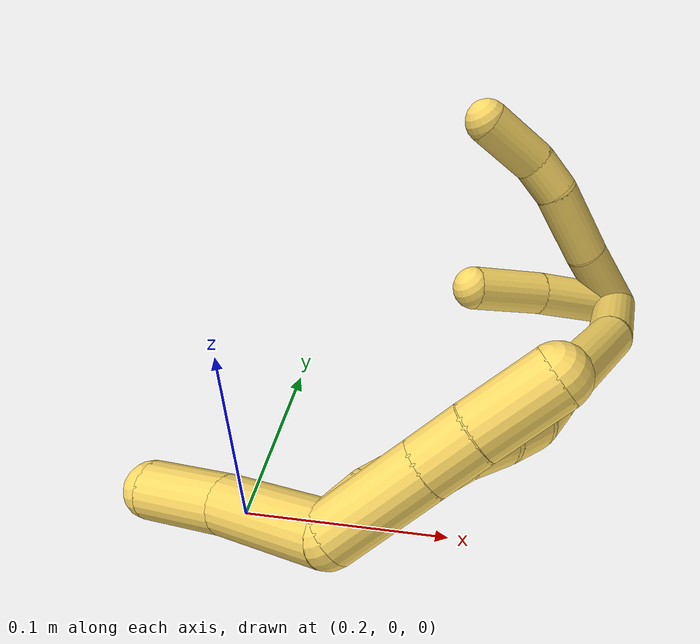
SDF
<sdf version="1.7">
 <world name="default">
  <model name="5">
   <static>0</static>
   <link name="5">
    <collision name="collision-cylinder-e_1_2_8">
     <pose>-0.000369 -5.5e-05 -0.022713 3.13918 -0.016224 -2.84612</pose>
     <geometry><cylinder><radius>0.0125</radius><length>0.045432</length></cylinder></geometry>
     <surface>
      <friction><ode><mu>1.16</mu><mu2>1.16</mu2><slip1>0</slip1><slip2>0</slip2></ode></friction>
      <contact><ode><kp>1e+06</kp><kd>1</kd><max_vel>0</max_vel><min_depth>0.001</min_depth></ode></contact>
     </surface>
    </collision>
    <visual name="visual-cylinder-e_1_2_8">
     <pose>-0.000369 -5.5e-05 -0.022713 3.13918 -0.016224 -2.84612</pose>
     <geometry><cylinder><radius>0.0125</radius><length>0.045432</length></cylinder></geometry>
     <material><ambient>1 0.858824 0.4 1</ambient></material>
    </visual>
    <collision name="collision-cylinder-e_2_8_9">
     <pose>0.000284 0.001495 -0.067843 -3.07012 0.045383 -1.1312</pose>
     <geometry><cylinder><radius>0.0125</radius><length>0.044994</length></cylinder></geometry>
     <surface>
      <friction><ode><mu>1.16</mu><mu2>1.16</mu2><slip1>0</slip1><slip2>0</slip2></ode></friction>
      <contact><ode><kp>1e+06</kp><kd>1</kd><max_vel>0</max_vel><min_depth>0.001</min_depth></ode></contact>
     </surface>
    </collision>
    <visual name="visual-cylinder-e_2_8_9">
     <pose>0.000284 0.001495 -0.067843 -3.07012 0.045383 -1.1312</pose>
     <geometry><cylinder><radius>0.0125</radius><length>0.044994</length></cylinder></geometry>
     <material><ambient>1 0.858824 0.4 1</ambient></material>
    </visual>
    <collision name="collision-cylinder-e_3_9_10">
     <pose>0.003421 0.002601 -0.100949 3.09492 0.195294 2.67383</pose>
     <geometry><cylinder><radius>0.0125</radius><length>0.021817</length></cylinder></geometry>
     <surface>
      <friction><ode><mu>1.16</mu><mu2>1.16</mu2><slip1>0</slip1><slip2>0</slip2></ode></friction>
      <contact><ode><kp>1e+06</kp><kd>1</kd><max_vel>0</max_vel><min_depth>0.001</min_depth></ode></contact>
     </surface>
    </collision>
    <visual name="visual-cylinder-e_3_9_10">
     <pose>0.003421 0.002601 -0.100949 3.09492 0.195294 2.67383</pose>
     <geometry><cylinder><radius>0.0125</radius><length>0.021817</length></cylinder></geometry>
     <material><ambient>1 0.858824 0.4 1</ambient></material>
    </visual>
    <collision name="collision-cylinder-e_4_10_6">
     <pose>0.007562 -0.003171 -0.129652 2.85686 0.107417 0.717648</pose>
     <geometry><cylinder><radius>0.0125</radius><length>0.037757</length></cylinder></geometry>
     <surface>
      <friction><ode><mu>1.16</mu><mu2>1.16</mu2><slip1>0</slip1><slip2>0</slip2></ode></friction>
      <contact><ode><kp>1e+06</kp><kd>1</kd><max_vel>0</max_vel><min_depth>0.001</min_depth></ode></contact>
     </surface>
    </collision>
    <visual name="visual-cylinder-e_4_10_6">
     <pose>0.007562 -0.003171 -0.129652 2.85686 0.107417 0.717648</pose>
     <geometry><cylinder><radius>0.0125</radius><length>0.037757</length></cylinder></geometry>
     <material><ambient>1 0.858824 0.4 1</ambient></material>
    </visual>
    <collision name="collision-cylinder-e_1_2_11">
     <pose>0.002768 -0.018463 -0.020798 2.41558 0.099193 0.259886</pose>
     <geometry><cylinder><radius>0.0125</radius><length>0.055896</length></cylinder></geometry>
     <surface>
      <friction><ode><mu>1.16</mu><mu2>1.16</mu2><slip1>0</slip1><slip2>0</slip2></ode></friction>
      <contact><ode><kp>1e+06</kp><kd>1</kd><max_vel>0</max_vel><min_depth>0.001</min_depth></ode></contact>
     </surface>
    </collision>
    <visual name="visual-cylinder-e_1_2_11">
     <pose>0.002768 -0.018463 -0.020798 2.41558 0.099193 0.259886</pose>
     <geometry><cylinder><radius>0.0125</radius><length>0.055896</length></cylinder></geometry>
     <material><ambient>1 0.858824 0.4 1</ambient></material>
    </visual>
    <collision name="collision-cylinder-e_2_11_5">
     <pose>0.006367 -0.052361 -0.057324 2.36566 0.03773 0.092266</pose>
     <geometry><cylinder><radius>0.0125</radius><length>0.044104</length></cylinder></geometry>
     <surface>
      <friction><ode><mu>1.16</mu><mu2>1.16</mu2><slip1>0</slip1><slip2>0</slip2></ode></friction>
      <contact><ode><kp>1e+06</kp><kd>1</kd><max_vel>0</max_vel><min_depth>0.001</min_depth></ode></contact>
     </surface>
    </collision>
    <visual name="visual-cylinder-e_2_11_5">
     <pose>0.006367 -0.052361 -0.057324 2.36566 0.03773 0.092266</pose>
     <geometry><cylinder><radius>0.0125</radius><length>0.044104</length></cylinder></geometry>
     <material><ambient>1 0.858824 0.4 1</ambient></material>
    </visual>
    <collision name="collision-cylinder-e_1_2_12">
     <pose>-0.024882 -0.016112 -0.012577 2.23361 -0.883113 -1.53893</pose>
     <geometry><cylinder><radius>0.0125</radius><length>0.064401</length></cylinder></geometry>
     <surface>
      <friction><ode><mu>1.16</mu><mu2>1.16</mu2><slip1>0</slip1><slip2>0</slip2></ode></friction>
      <contact><ode><kp>1e+06</kp><kd>1</kd><max_vel>0</max_vel><min_depth>0.001</min_depth></ode></contact>
     </surface>
    </collision>
    <visual name="visual-cylinder-e_1_2_12">
     <pose>-0.024882 -0.016112 -0.012577 2.23361 -0.883113 -1.53893</pose>
     <geometry><cylinder><radius>0.0125</radius><length>0.064401</length></cylinder></geometry>
     <material><ambient>1 0.858824 0.4 1</ambient></material>
    </visual>
    <collision name="collision-cylinder-e_2_12_13">
     <pose>-0.072343 -0.055367 -0.043505 2.24121 -0.652686 -1.22184</pose>
     <geometry><cylinder><radius>0.0125</radius><length>0.074356</length></cylinder></geometry>
     <surface>
      <friction><ode><mu>1.16</mu><mu2>1.16</mu2><slip1>0</slip1><slip2>0</slip2></ode></friction>
      <contact><ode><kp>1e+06</kp><kd>1</kd><max_vel>0</max_vel><min_depth>0.001</min_depth></ode></contact>
     </surface>
    </collision>
    <visual name="visual-cylinder-e_2_12_13">
     <pose>-0.072343 -0.055367 -0.043505 2.24121 -0.652686 -1.22184</pose>
     <geometry><cylinder><radius>0.0125</radius><length>0.074356</length></cylinder></geometry>
     <material><ambient>1 0.858824 0.4 1</ambient></material>
    </visual>
    <collision name="collision-cylinder-e_3_13_14">
     <pose>-0.101464 -0.084604 -0.06749 2.31698 -0.667616 -1.34077</pose>
     <geometry><cylinder><radius>0.0125</radius><length>0.021135</length></cylinder></geometry>
     <surface>
      <friction><ode><mu>1.16</mu><mu2>1.16</mu2><slip1>0</slip1><slip2>0</slip2></ode></friction>
      <contact><ode><kp>1e+06</kp><kd>1</kd><max_vel>0</max_vel><min_depth>0.001</min_depth></ode></contact>
     </surface>
    </collision>
    <visual name="visual-cylinder-e_3_13_14">
     <pose>-0.101464 -0.084604 -0.06749 2.31698 -0.667616 -1.34077</pose>
     <geometry><cylinder><radius>0.0125</radius><length>0.021135</length></cylinder></geometry>
     <material><ambient>1 0.858824 0.4 1</ambient></material>
    </visual>
    <collision name="collision-cylinder-e_4_14_15">
     <pose>-0.114964 -0.095504 -0.078546 2.41631 -0.765034 -1.6294</pose>
     <geometry><cylinder><radius>0.0125</radius><length>0.020092</length></cylinder></geometry>
     <surface>
      <friction><ode><mu>1.16</mu><mu2>1.16</mu2><slip1>0</slip1><slip2>0</slip2></ode></friction>
      <contact><ode><kp>1e+06</kp><kd>1</kd><max_vel>0</max_vel><min_depth>0.001</min_depth></ode></contact>
     </surface>
    </collision>
    <visual name="visual-cylinder-e_4_14_15">
     <pose>-0.114964 -0.095504 -0.078546 2.41631 -0.765034 -1.6294</pose>
     <geometry><cylinder><radius>0.0125</radius><length>0.020092</length></cylinder></geometry>
     <material><ambient>1 0.858824 0.4 1</ambient></material>
    </visual>
    <collision name="collision-cylinder-e_5_15_16">
     <pose>-0.128151 -0.106817 -0.088327 2.161 -0.672 -1.15878</pose>
     <geometry><cylinder><radius>0.0125</radius><length>0.020011</length></cylinder></geometry>
     <surface>
      <friction><ode><mu>1.16</mu><mu2>1.16</mu2><slip1>0</slip1><slip2>0</slip2></ode></friction>
      <contact><ode><kp>1e+06</kp><kd>1</kd><max_vel>0</max_vel><min_depth>0.001</min_depth></ode></contact>
     </surface>
    </collision>
    <visual name="visual-cylinder-e_5_15_16">
     <pose>-0.128151 -0.106817 -0.088327 2.161 -0.672 -1.15878</pose>
     <geometry><cylinder><radius>0.0125</radius><length>0.020011</length></cylinder></geometry>
     <material><ambient>1 0.858824 0.4 1</ambient></material>
    </visual>
    <collision name="collision-cylinder-e_6_16_17">
     <pose>-0.138178 -0.120609 -0.098387 2.23484 -0.38952 -0.769388</pose>
     <geometry><cylinder><radius>0.0125</radius><length>0.020004</length></cylinder></geometry>
     <surface>
      <friction><ode><mu>1.16</mu><mu2>1.16</mu2><slip1>0</slip1><slip2>0</slip2></ode></friction>
      <contact><ode><kp>1e+06</kp><kd>1</kd><max_vel>0</max_vel><min_depth>0.001</min_depth></ode></contact>
     </surface>
    </collision>
    <visual name="visual-cylinder-e_6_16_17">
     <pose>-0.138178 -0.120609 -0.098387 2.23484 -0.38952 -0.769388</pose>
     <geometry><cylinder><radius>0.0125</radius><length>0.020004</length></cylinder></geometry>
     <material><ambient>1 0.858824 0.4 1</ambient></material>
    </visual>
    <collision name="collision-cylinder-e_7_17_18">
     <pose>-0.143859 -0.136009 -0.109624 2.16947 -0.189477 -0.355899</pose>
     <geometry><cylinder><radius>0.0125</radius><length>0.020001</length></cylinder></geometry>
     <surface>
      <friction><ode><mu>1.16</mu><mu2>1.16</mu2><slip1>0</slip1><slip2>0</slip2></ode></friction>
      <contact><ode><kp>1e+06</kp><kd>1</kd><max_vel>0</max_vel><min_depth>0.001</min_depth></ode></contact>
     </surface>
    </collision>
    <visual name="visual-cylinder-e_7_17_18">
     <pose>-0.143859 -0.136009 -0.109624 2.16947 -0.189477 -0.355899</pose>
     <geometry><cylinder><radius>0.0125</radius><length>0.020001</length></cylinder></geometry>
     <material><ambient>1 0.858824 0.4 1</ambient></material>
    </visual>
    <collision name="collision-cylinder-e_8_18_19">
     <pose>-0.147054 -0.153327 -0.11884 1.95124 -0.131436 -0.193794</pose>
     <geometry><cylinder><radius>0.0125</radius><length>0.02</length></cylinder></geometry>
     <surface>
      <friction><ode><mu>1.16</mu><mu2>1.16</mu2><slip1>0</slip1><slip2>0</slip2></ode></friction>
      <contact><ode><kp>1e+06</kp><kd>1</kd><max_vel>0</max_vel><min_depth>0.001</min_depth></ode></contact>
     </surface>
    </collision>
    <visual name="visual-cylinder-e_8_18_19">
     <pose>-0.147054 -0.153327 -0.11884 1.95124 -0.131436 -0.193794</pose>
     <geometry><cylinder><radius>0.0125</radius><length>0.02</length></cylinder></geometry>
     <material><ambient>1 0.858824 0.4 1</ambient></material>
    </visual>
    <collision name="collision-cylinder-e_9_19_20">
     <pose>-0.149443 -0.171827 -0.126048 1.93342 -0.108105 -0.156473</pose>
     <geometry><cylinder><radius>0.0125</radius><length>0.02</length></cylinder></geometry>
     <surface>
      <friction><ode><mu>1.16</mu><mu2>1.16</mu2><slip1>0</slip1><slip2>0</slip2></ode></friction>
      <contact><ode><kp>1e+06</kp><kd>1</kd><max_vel>0</max_vel><min_depth>0.001</min_depth></ode></contact>
     </surface>
    </collision>
    <visual name="visual-cylinder-e_9_19_20">
     <pose>-0.149443 -0.171827 -0.126048 1.93342 -0.108105 -0.156473</pose>
     <geometry><cylinder><radius>0.0125</radius><length>0.02</length></cylinder></geometry>
     <material><ambient>1 0.858824 0.4 1</ambient></material>
    </visual>
    <collision name="collision-cylinder-e_10_20_1">
     <pose>-0.15206 -0.190886 -0.131093 1.72499 -0.154385 -0.180104</pose>
     <geometry><cylinder><radius>0.0125</radius><length>0.02</length></cylinder></geometry>
     <surface>
      <friction><ode><mu>1.16</mu><mu2>1.16</mu2><slip1>0</slip1><slip2>0</slip2></ode></friction>
      <contact><ode><kp>1e+06</kp><kd>1</kd><max_vel>0</max_vel><min_depth>0.001</min_depth></ode></contact>
     </surface>
    </collision>
    <visual name="visual-cylinder-e_10_20_1">
     <pose>-0.15206 -0.190886 -0.131093 1.72499 -0.154385 -0.180104</pose>
     <geometry><cylinder><radius>0.0125</radius><length>0.02</length></cylinder></geometry>
     <material><ambient>1 0.858824 0.4 1</ambient></material>
    </visual>
    <collision name="collision-cylinder-e_1_1_21">
     <pose>-0.126806 -0.214623 -0.134862 1.73055 1.08478 1.23157</pose>
     <geometry><cylinder><radius>0.0125</radius><length>0.0606</length></cylinder></geometry>
     <surface>
      <friction><ode><mu>1.16</mu><mu2>1.16</mu2><slip1>0</slip1><slip2>0</slip2></ode></friction>
      <contact><ode><kp>1e+06</kp><kd>1</kd><max_vel>0</max_vel><min_depth>0.001</min_depth></ode></contact>
     </surface>
    </collision>
    <visual name="visual-cylinder-e_1_1_21">
     <pose>-0.126806 -0.214623 -0.134862 1.73055 1.08478 1.23157</pose>
     <geometry><cylinder><radius>0.0125</radius><length>0.0606</length></cylinder></geometry>
     <material><ambient>1 0.858824 0.4 1</ambient></material>
    </visual>
    <collision name="collision-cylinder-e_2_21_4">
     <pose>-0.085033 -0.240022 -0.142866 2.03723 0.864044 1.28489</pose>
     <geometry><cylinder><radius>0.0125</radius><length>0.0394</length></cylinder></geometry>
     <surface>
      <friction><ode><mu>1.16</mu><mu2>1.16</mu2><slip1>0</slip1><slip2>0</slip2></ode></friction>
      <contact><ode><kp>1e+06</kp><kd>1</kd><max_vel>0</max_vel><min_depth>0.001</min_depth></ode></contact>
     </surface>
    </collision>
    <visual name="visual-cylinder-e_2_21_4">
     <pose>-0.085033 -0.240022 -0.142866 2.03723 0.864044 1.28489</pose>
     <geometry><cylinder><radius>0.0125</radius><length>0.0394</length></cylinder></geometry>
     <material><ambient>1 0.858824 0.4 1</ambient></material>
    </visual>
    <collision name="collision-cylinder-e_1_1_22">
     <pose>-0.15954 -0.179996 -0.134265 -1.65074 -0.279277 0.302207</pose>
     <geometry><cylinder><radius>0.0125</radius><length>0.043112</length></cylinder></geometry>
     <surface>
      <friction><ode><mu>1.16</mu><mu2>1.16</mu2><slip1>0</slip1><slip2>0</slip2></ode></friction>
      <contact><ode><kp>1e+06</kp><kd>1</kd><max_vel>0</max_vel><min_depth>0.001</min_depth></ode></contact>
     </surface>
    </collision>
    <visual name="visual-cylinder-e_1_1_22">
     <pose>-0.15954 -0.179996 -0.134265 -1.65074 -0.279277 0.302207</pose>
     <geometry><cylinder><radius>0.0125</radius><length>0.043112</length></cylinder></geometry>
     <material><ambient>1 0.858824 0.4 1</ambient></material>
    </visual>
    <collision name="collision-cylinder-e_2_22_23">
     <pose>-0.168476 -0.148921 -0.136786 -1.65373 -0.278853 0.302641</pose>
     <geometry><cylinder><radius>0.0125</radius><length>0.021753</length></cylinder></geometry>
     <surface>
      <friction><ode><mu>1.16</mu><mu2>1.16</mu2><slip1>0</slip1><slip2>0</slip2></ode></friction>
      <contact><ode><kp>1e+06</kp><kd>1</kd><max_vel>0</max_vel><min_depth>0.001</min_depth></ode></contact>
     </surface>
    </collision>
    <visual name="visual-cylinder-e_2_22_23">
     <pose>-0.168476 -0.148921 -0.136786 -1.65373 -0.278853 0.302641</pose>
     <geometry><cylinder><radius>0.0125</radius><length>0.021753</length></cylinder></geometry>
     <material><ambient>1 0.858824 0.4 1</ambient></material>
    </visual>
    <collision name="collision-cylinder-e_3_23_3">
     <pose>-0.175904 -0.121514 -0.138291 -1.60838 -0.255214 0.26488</pose>
     <geometry><cylinder><radius>0.0125</radius><length>0.035135</length></cylinder></geometry>
     <surface>
      <friction><ode><mu>1.16</mu><mu2>1.16</mu2><slip1>0</slip1><slip2>0</slip2></ode></friction>
      <contact><ode><kp>1e+06</kp><kd>1</kd><max_vel>0</max_vel><min_depth>0.001</min_depth></ode></contact>
     </surface>
    </collision>
    <visual name="visual-cylinder-e_3_23_3">
     <pose>-0.175904 -0.121514 -0.138291 -1.60838 -0.255214 0.26488</pose>
     <geometry><cylinder><radius>0.0125</radius><length>0.035135</length></cylinder></geometry>
     <material><ambient>1 0.858824 0.4 1</ambient></material>
    </visual>
    <collision name="collision-sphere-3">
     <pose>-0.180339 -0.104527 -0.13893 0 -0 0</pose>
     <geometry><sphere><radius>0.0125</radius></sphere></geometry>
     <surface>
      <friction><ode><mu>1.16</mu><mu2>1.16</mu2><slip1>0</slip1><slip2>0</slip2></ode></friction>
      <contact><ode><kp>1e+06</kp><kd>1</kd><max_vel>0</max_vel><min_depth>0.001</min_depth></ode></contact>
     </surface>
    </collision>
    <visual name="visual-sphere-3">
     <pose>-0.180339 -0.104527 -0.13893 0 -0 0</pose>
     <geometry><sphere><radius>0.0125</radius></sphere></geometry>
     <material><ambient>1 0.858824 0.4 1</ambient></material>
    </visual>
    <collision name="collision-sphere-23">
     <pose>-0.171469 -0.1385 -0.137652 0 -0 0</pose>
     <geometry><sphere><radius>0.0125</radius></sphere></geometry>
     <surface>
      <friction><ode><mu>1.16</mu><mu2>1.16</mu2><slip1>0</slip1><slip2>0</slip2></ode></friction>
      <contact><ode><kp>1e+06</kp><kd>1</kd><max_vel>0</max_vel><min_depth>0.001</min_depth></ode></contact>
     </surface>
    </collision>
    <visual name="visual-sphere-23">
     <pose>-0.171469 -0.1385 -0.137652 0 -0 0</pose>
     <geometry><sphere><radius>0.0125</radius></sphere></geometry>
     <material><ambient>1 0.858824 0.4 1</ambient></material>
    </visual>
    <collision name="collision-sphere-22">
     <pose>-0.165482 -0.159341 -0.13592 0 -0 0</pose>
     <geometry><sphere><radius>0.0125</radius></sphere></geometry>
     <surface>
      <friction><ode><mu>1.16</mu><mu2>1.16</mu2><slip1>0</slip1><slip2>0</slip2></ode></friction>
      <contact><ode><kp>1e+06</kp><kd>1</kd><max_vel>0</max_vel><min_depth>0.001</min_depth></ode></contact>
     </surface>
    </collision>
    <visual name="visual-sphere-22">
     <pose>-0.165482 -0.159341 -0.13592 0 -0 0</pose>
     <geometry><sphere><radius>0.0125</radius></sphere></geometry>
     <material><ambient>1 0.858824 0.4 1</ambient></material>
    </visual>
    <collision name="collision-sphere-4">
     <pose>-0.070052 -0.251448 -0.148619 0 -0 0</pose>
     <geometry><sphere><radius>0.0125</radius></sphere></geometry>
     <surface>
      <friction><ode><mu>1.16</mu><mu2>1.16</mu2><slip1>0</slip1><slip2>0</slip2></ode></friction>
      <contact><ode><kp>1e+06</kp><kd>1</kd><max_vel>0</max_vel><min_depth>0.001</min_depth></ode></contact>
     </surface>
    </collision>
    <visual name="visual-sphere-4">
     <pose>-0.070052 -0.251448 -0.148619 0 -0 0</pose>
     <geometry><sphere><radius>0.0125</radius></sphere></geometry>
     <material><ambient>1 0.858824 0.4 1</ambient></material>
    </visual>
    <collision name="collision-sphere-21">
     <pose>-0.100015 -0.228597 -0.137113 0 -0 0</pose>
     <geometry><sphere><radius>0.0125</radius></sphere></geometry>
     <surface>
      <friction><ode><mu>1.16</mu><mu2>1.16</mu2><slip1>0</slip1><slip2>0</slip2></ode></friction>
      <contact><ode><kp>1e+06</kp><kd>1</kd><max_vel>0</max_vel><min_depth>0.001</min_depth></ode></contact>
     </surface>
    </collision>
    <visual name="visual-sphere-21">
     <pose>-0.100015 -0.228597 -0.137113 0 -0 0</pose>
     <geometry><sphere><radius>0.0125</radius></sphere></geometry>
     <material><ambient>1 0.858824 0.4 1</ambient></material>
    </visual>
    <collision name="collision-sphere-1">
     <pose>-0.153598 -0.20065 -0.13261 0 -0 0</pose>
     <geometry><sphere><radius>0.0125</radius></sphere></geometry>
     <surface>
      <friction><ode><mu>1.16</mu><mu2>1.16</mu2><slip1>0</slip1><slip2>0</slip2></ode></friction>
      <contact><ode><kp>1e+06</kp><kd>1</kd><max_vel>0</max_vel><min_depth>0.001</min_depth></ode></contact>
     </surface>
    </collision>
    <visual name="visual-sphere-1">
     <pose>-0.153598 -0.20065 -0.13261 0 -0 0</pose>
     <geometry><sphere><radius>0.0125</radius></sphere></geometry>
     <material><ambient>1 0.858824 0.4 1</ambient></material>
    </visual>
    <collision name="collision-sphere-11">
     <pose>0.005535 -0.036927 -0.041595 0 -0 0</pose>
     <geometry><sphere><radius>0.0125</radius></sphere></geometry>
     <surface>
      <friction><ode><mu>1.16</mu><mu2>1.16</mu2><slip1>0</slip1><slip2>0</slip2></ode></friction>
      <contact><ode><kp>1e+06</kp><kd>1</kd><max_vel>0</max_vel><min_depth>0.001</min_depth></ode></contact>
     </surface>
    </collision>
    <visual name="visual-sphere-11">
     <pose>0.005535 -0.036927 -0.041595 0 -0 0</pose>
     <geometry><sphere><radius>0.0125</radius></sphere></geometry>
     <material><ambient>1 0.858824 0.4 1</ambient></material>
    </visual>
    <collision name="collision-sphere-6">
     <pose>0.009586 -0.008443 -0.147666 0 -0 0</pose>
     <geometry><sphere><radius>0.0125</radius></sphere></geometry>
     <surface>
      <friction><ode><mu>1.16</mu><mu2>1.16</mu2><slip1>0</slip1><slip2>0</slip2></ode></friction>
      <contact><ode><kp>1e+06</kp><kd>1</kd><max_vel>0</max_vel><min_depth>0.001</min_depth></ode></contact>
     </surface>
    </collision>
    <visual name="visual-sphere-6">
     <pose>0.009586 -0.008443 -0.147666 0 -0 0</pose>
     <geometry><sphere><radius>0.0125</radius></sphere></geometry>
     <material><ambient>1 0.858824 0.4 1</ambient></material>
    </visual>
    <collision name="collision-sphere-10">
     <pose>0.005538 0.002102 -0.111638 0 -0 0</pose>
     <geometry><sphere><radius>0.0125</radius></sphere></geometry>
     <surface>
      <friction><ode><mu>1.16</mu><mu2>1.16</mu2><slip1>0</slip1><slip2>0</slip2></ode></friction>
      <contact><ode><kp>1e+06</kp><kd>1</kd><max_vel>0</max_vel><min_depth>0.001</min_depth></ode></contact>
     </surface>
    </collision>
    <visual name="visual-sphere-10">
     <pose>0.005538 0.002102 -0.111638 0 -0 0</pose>
     <geometry><sphere><radius>0.0125</radius></sphere></geometry>
     <material><ambient>1 0.858824 0.4 1</ambient></material>
    </visual>
    <collision name="collision-sphere-9">
     <pose>0.001304 0.0031 -0.090259 0 -0 0</pose>
     <geometry><sphere><radius>0.0125</radius></sphere></geometry>
     <surface>
      <friction><ode><mu>1.16</mu><mu2>1.16</mu2><slip1>0</slip1><slip2>0</slip2></ode></friction>
      <contact><ode><kp>1e+06</kp><kd>1</kd><max_vel>0</max_vel><min_depth>0.001</min_depth></ode></contact>
     </surface>
    </collision>
    <visual name="visual-sphere-9">
     <pose>0.001304 0.0031 -0.090259 0 -0 0</pose>
     <geometry><sphere><radius>0.0125</radius></sphere></geometry>
     <material><ambient>1 0.858824 0.4 1</ambient></material>
    </visual>
    <collision name="collision-sphere-2">
     <geometry><sphere><radius>0.0125</radius></sphere></geometry>
     <surface>
      <friction><ode><mu>1.16</mu><mu2>1.16</mu2><slip1>0</slip1><slip2>0</slip2></ode></friction>
      <contact><ode><kp>1e+06</kp><kd>1</kd><max_vel>0</max_vel><min_depth>0.001</min_depth></ode></contact>
     </surface>
    </collision>
    <visual name="visual-sphere-2">
     <geometry><sphere><radius>0.0125</radius></sphere></geometry>
     <material><ambient>1 0.858824 0.4 1</ambient></material>
    </visual>
    <collision name="collision-sphere-19">
     <pose>-0.148364 -0.162532 -0.122522 0 -0 0</pose>
     <geometry><sphere><radius>0.0125</radius></sphere></geometry>
     <surface>
      <friction><ode><mu>1.16</mu><mu2>1.16</mu2><slip1>0</slip1><slip2>0</slip2></ode></friction>
      <contact><ode><kp>1e+06</kp><kd>1</kd><max_vel>0</max_vel><min_depth>0.001</min_depth></ode></contact>
     </surface>
    </collision>
    <visual name="visual-sphere-19">
     <pose>-0.148364 -0.162532 -0.122522 0 -0 0</pose>
     <geometry><sphere><radius>0.0125</radius></sphere></geometry>
     <material><ambient>1 0.858824 0.4 1</ambient></material>
    </visual>
    <collision name="collision-sphere-8">
     <pose>-0.000737 -0.00011 -0.045426 0 -0 0</pose>
     <geometry><sphere><radius>0.0125</radius></sphere></geometry>
     <surface>
      <friction><ode><mu>1.16</mu><mu2>1.16</mu2><slip1>0</slip1><slip2>0</slip2></ode></friction>
      <contact><ode><kp>1e+06</kp><kd>1</kd><max_vel>0</max_vel><min_depth>0.001</min_depth></ode></contact>
     </surface>
    </collision>
    <visual name="visual-sphere-8">
     <pose>-0.000737 -0.00011 -0.045426 0 -0 0</pose>
     <geometry><sphere><radius>0.0125</radius></sphere></geometry>
     <material><ambient>1 0.858824 0.4 1</ambient></material>
    </visual>
    <collision name="collision-sphere-5">
     <pose>0.007199 -0.067794 -0.073053 0 -0 0</pose>
     <geometry><sphere><radius>0.0125</radius></sphere></geometry>
     <surface>
      <friction><ode><mu>1.16</mu><mu2>1.16</mu2><slip1>0</slip1><slip2>0</slip2></ode></friction>
      <contact><ode><kp>1e+06</kp><kd>1</kd><max_vel>0</max_vel><min_depth>0.001</min_depth></ode></contact>
     </surface>
    </collision>
    <visual name="visual-sphere-5">
     <pose>0.007199 -0.067794 -0.073053 0 -0 0</pose>
     <geometry><sphere><radius>0.0125</radius></sphere></geometry>
     <material><ambient>1 0.858824 0.4 1</ambient></material>
    </visual>
    <collision name="collision-sphere-12">
     <pose>-0.049764 -0.032223 -0.025154 0 -0 0</pose>
     <geometry><sphere><radius>0.0125</radius></sphere></geometry>
     <surface>
      <friction><ode><mu>1.16</mu><mu2>1.16</mu2><slip1>0</slip1><slip2>0</slip2></ode></friction>
      <contact><ode><kp>1e+06</kp><kd>1</kd><max_vel>0</max_vel><min_depth>0.001</min_depth></ode></contact>
     </surface>
    </collision>
    <visual name="visual-sphere-12">
     <pose>-0.049764 -0.032223 -0.025154 0 -0 0</pose>
     <geometry><sphere><radius>0.0125</radius></sphere></geometry>
     <material><ambient>1 0.858824 0.4 1</ambient></material>
    </visual>
    <collision name="collision-sphere-13">
     <pose>-0.094922 -0.07851 -0.061857 0 -0 0</pose>
     <geometry><sphere><radius>0.0125</radius></sphere></geometry>
     <surface>
      <friction><ode><mu>1.16</mu><mu2>1.16</mu2><slip1>0</slip1><slip2>0</slip2></ode></friction>
      <contact><ode><kp>1e+06</kp><kd>1</kd><max_vel>0</max_vel><min_depth>0.001</min_depth></ode></contact>
     </surface>
    </collision>
    <visual name="visual-sphere-13">
     <pose>-0.094922 -0.07851 -0.061857 0 -0 0</pose>
     <geometry><sphere><radius>0.0125</radius></sphere></geometry>
     <material><ambient>1 0.858824 0.4 1</ambient></material>
    </visual>
    <collision name="collision-sphere-14">
     <pose>-0.108007 -0.090697 -0.073123 0 -0 0</pose>
     <geometry><sphere><radius>0.0125</radius></sphere></geometry>
     <surface>
      <friction><ode><mu>1.16</mu><mu2>1.16</mu2><slip1>0</slip1><slip2>0</slip2></ode></friction>
      <contact><ode><kp>1e+06</kp><kd>1</kd><max_vel>0</max_vel><min_depth>0.001</min_depth></ode></contact>
     </surface>
    </collision>
    <visual name="visual-sphere-14">
     <pose>-0.108007 -0.090697 -0.073123 0 -0 0</pose>
     <geometry><sphere><radius>0.0125</radius></sphere></geometry>
     <material><ambient>1 0.858824 0.4 1</ambient></material>
    </visual>
    <collision name="collision-sphere-15">
     <pose>-0.121922 -0.100312 -0.083969 0 -0 0</pose>
     <geometry><sphere><radius>0.0125</radius></sphere></geometry>
     <surface>
      <friction><ode><mu>1.16</mu><mu2>1.16</mu2><slip1>0</slip1><slip2>0</slip2></ode></friction>
      <contact><ode><kp>1e+06</kp><kd>1</kd><max_vel>0</max_vel><min_depth>0.001</min_depth></ode></contact>
     </surface>
    </collision>
    <visual name="visual-sphere-15">
     <pose>-0.121922 -0.100312 -0.083969 0 -0 0</pose>
     <geometry><sphere><radius>0.0125</radius></sphere></geometry>
     <material><ambient>1 0.858824 0.4 1</ambient></material>
    </visual>
    <collision name="collision-sphere-16">
     <pose>-0.134379 -0.113322 -0.092684 0 -0 0</pose>
     <geometry><sphere><radius>0.0125</radius></sphere></geometry>
     <surface>
      <friction><ode><mu>1.16</mu><mu2>1.16</mu2><slip1>0</slip1><slip2>0</slip2></ode></friction>
      <contact><ode><kp>1e+06</kp><kd>1</kd><max_vel>0</max_vel><min_depth>0.001</min_depth></ode></contact>
     </surface>
    </collision>
    <visual name="visual-sphere-16">
     <pose>-0.134379 -0.113322 -0.092684 0 -0 0</pose>
     <geometry><sphere><radius>0.0125</radius></sphere></geometry>
     <material><ambient>1 0.858824 0.4 1</ambient></material>
    </visual>
    <collision name="collision-sphere-17">
     <pose>-0.141976 -0.127896 -0.104089 0 -0 0</pose>
     <geometry><sphere><radius>0.0125</radius></sphere></geometry>
     <surface>
      <friction><ode><mu>1.16</mu><mu2>1.16</mu2><slip1>0</slip1><slip2>0</slip2></ode></friction>
      <contact><ode><kp>1e+06</kp><kd>1</kd><max_vel>0</max_vel><min_depth>0.001</min_depth></ode></contact>
     </surface>
    </collision>
    <visual name="visual-sphere-17">
     <pose>-0.141976 -0.127896 -0.104089 0 -0 0</pose>
     <geometry><sphere><radius>0.0125</radius></sphere></geometry>
     <material><ambient>1 0.858824 0.4 1</ambient></material>
    </visual>
    <collision name="collision-sphere-18">
     <pose>-0.145743 -0.144122 -0.115159 0 -0 0</pose>
     <geometry><sphere><radius>0.0125</radius></sphere></geometry>
     <surface>
      <friction><ode><mu>1.16</mu><mu2>1.16</mu2><slip1>0</slip1><slip2>0</slip2></ode></friction>
      <contact><ode><kp>1e+06</kp><kd>1</kd><max_vel>0</max_vel><min_depth>0.001</min_depth></ode></contact>
     </surface>
    </collision>
    <visual name="visual-sphere-18">
     <pose>-0.145743 -0.144122 -0.115159 0 -0 0</pose>
     <geometry><sphere><radius>0.0125</radius></sphere></geometry>
     <material><ambient>1 0.858824 0.4 1</ambient></material>
    </visual>
    <collision name="collision-sphere-20">
     <pose>-0.150522 -0.181122 -0.129575 0 -0 0</pose>
     <geometry><sphere><radius>0.0125</radius></sphere></geometry>
     <surface>
      <friction><ode><mu>1.16</mu><mu2>1.16</mu2><slip1>0</slip1><slip2>0</slip2></ode></friction>
      <contact><ode><kp>1e+06</kp><kd>1</kd><max_vel>0</max_vel><min_depth>0.001</min_depth></ode></contact>
     </surface>
    </collision>
    <visual name="visual-sphere-20">
     <pose>-0.150522 -0.181122 -0.129575 0 -0 0</pose>
     <geometry><sphere><radius>0.0125</radius></sphere></geometry>
     <material><ambient>1 0.858824 0.4 1</ambient></material>
    </visual>
    <inertial>
     <pose>-0.074106 -0.090032 -0.083726 0 -0 0</pose>
     <mass>0.75</mass>
     <inertia><ixx>2e-05</ixx><ixy>0</ixy><ixz>0</ixz><iyy>-2.4e-05</iyy><iyz>0</iyz><izz>5.6e-05</izz></inertia>
    </inertial>
   </link>
   <pose>0.382299 0.183427 0.011494 2.67993 0.272463 2.17149</pose>
  </model>
 </world>
</sdf>
